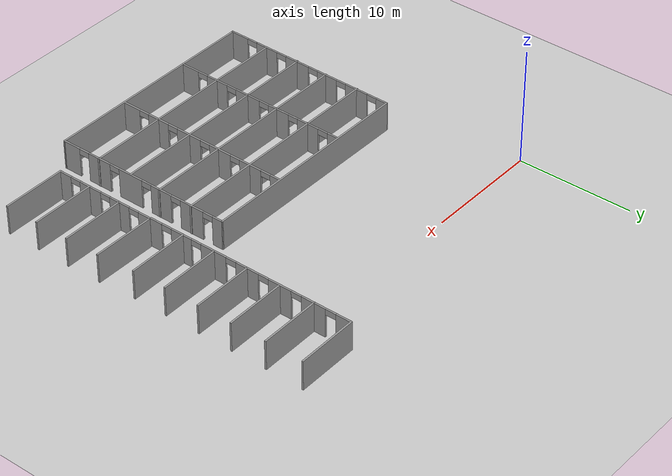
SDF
<sdf version="1.6">
 <world name="default">
  <model name="ground_plane">
   <static>1</static>
   <link name="link">
    <collision name="collision">
     <geometry><plane><normal>0 0 1</normal><size>100 100</size></plane></geometry>
     <surface>
      <contact><collide_bitmask>65535</collide_bitmask></contact>
      <friction><ode><mu>100</mu><mu2>50</mu2></ode></friction>
     </surface>
    </collision>
    <visual name="visual">
     <cast_shadows>0</cast_shadows>
     <geometry><plane><normal>0 0 1</normal><size>100 100</size></plane></geometry>
     <material>
      <script><uri>file://media/materials/scripts/gazebo.material</uri><name>Gazebo/Grey</name></script>
     </material>
    </visual>
   </link>
  </model>
  <model name="5x3_Cubicles_1">
   <pose>15.7119 -15.892 2.72806 0 -0 0</pose>
   <link name="Wall_0">
    <pose>-9.39351 -0 0 0 -0 -1.57435</pose>
    <visual name="Wall_0_Visual_0">
     <pose>-7.27295 0 1.25 0 -0 0</pose>
     <geometry><box><size>1.03181 0.15 2.5</size></box></geometry>
     <material>
      <script><uri>file://media/materials/scripts/gazebo.material</uri><name>Gazebo/Grey</name></script>
      <ambient>1 1 1 1</ambient>
     </material>
     <meta><layer>0</layer></meta>
    </visual>
    <collision name="Wall_0_Collision_0">
     <geometry><box><size>1.03181 0.15 2.5</size></box></geometry>
     <pose>-7.27295 0 1.25 0 -0 0</pose>
    </collision>
    <visual name="Wall_0_Visual_1">
     <pose>-4.8086 0 1.25 0 -0 0</pose>
     <geometry><box><size>2.09689 0.15 2.5</size></box></geometry>
     <material>
      <script><uri>file://media/materials/scripts/gazebo.material</uri><name>Gazebo/Grey</name></script>
      <ambient>1 1 1 1</ambient>
     </material>
     <meta><layer>0</layer></meta>
    </visual>
    <collision name="Wall_0_Collision_1">
     <geometry><box><size>2.09689 0.15 2.5</size></box></geometry>
     <pose>-4.8086 0 1.25 0 -0 0</pose>
    </collision>
    <visual name="Wall_0_Visual_2">
     <pose>-1.91379 0 1.25 0 -0 0</pose>
     <geometry><box><size>1.89272 0.15 2.5</size></box></geometry>
     <material>
      <script><uri>file://media/materials/scripts/gazebo.material</uri><name>Gazebo/Grey</name></script>
      <ambient>1 1 1 1</ambient>
     </material>
     <meta><layer>0</layer></meta>
    </visual>
    <collision name="Wall_0_Collision_2">
     <geometry><box><size>1.89272 0.15 2.5</size></box></geometry>
     <pose>-1.91379 0 1.25 0 -0 0</pose>
    </collision>
    <visual name="Wall_0_Visual_3">
     <pose>1.06918 0 1.25 0 -0 0</pose>
     <geometry><box><size>2.27323 0.15 2.5</size></box></geometry>
     <material>
      <script><uri>file://media/materials/scripts/gazebo.material</uri><name>Gazebo/Grey</name></script>
      <ambient>1 1 1 1</ambient>
     </material>
     <meta><layer>0</layer></meta>
    </visual>
    <collision name="Wall_0_Collision_3">
     <geometry><box><size>2.27323 0.15 2.5</size></box></geometry>
     <pose>1.06918 0 1.25 0 -0 0</pose>
    </collision>
    <visual name="Wall_0_Visual_4">
     <pose>4.14705 0 1.25 0 -0 0</pose>
     <geometry><box><size>2.0825 0.15 2.5</size></box></geometry>
     <material>
      <script><uri>file://media/materials/scripts/gazebo.material</uri><name>Gazebo/Grey</name></script>
      <ambient>1 1 1 1</ambient>
     </material>
     <meta><layer>0</layer></meta>
    </visual>
    <collision name="Wall_0_Collision_4">
     <geometry><box><size>2.0825 0.15 2.5</size></box></geometry>
     <pose>4.14705 0 1.25 0 -0 0</pose>
    </collision>
    <visual name="Wall_0_Visual_5">
     <pose>6.93858 0 1.25 0 -0 0</pose>
     <geometry><box><size>1.70057 0.15 2.5</size></box></geometry>
     <material>
      <script><uri>file://media/materials/scripts/gazebo.material</uri><name>Gazebo/Grey</name></script>
      <ambient>1 1 1 1</ambient>
     </material>
     <meta><layer>0</layer></meta>
    </visual>
    <collision name="Wall_0_Collision_5">
     <geometry><box><size>1.70057 0.15 2.5</size></box></geometry>
     <pose>6.93858 0 1.25 0 -0 0</pose>
    </collision>
    <visual name="Wall_0_Visual_6">
     <pose>-6.30705 0 2.25 0 -0 0</pose>
     <geometry><box><size>0.9 0.15 0.5</size></box></geometry>
     <material>
      <script><uri>file://media/materials/scripts/gazebo.material</uri><name>Gazebo/Grey</name></script>
      <ambient>1 1 1 1</ambient>
     </material>
     <meta><layer>0</layer></meta>
    </visual>
    <collision name="Wall_0_Collision_6">
     <geometry><box><size>0.9 0.15 0.5</size></box></geometry>
     <pose>-6.30705 0 2.25 0 -0 0</pose>
    </collision>
    <visual name="Wall_0_Visual_7">
     <pose>-3.31016 0 2.25 0 -0 0</pose>
     <geometry><box><size>0.9 0.15 0.5</size></box></geometry>
     <material>
      <script><uri>file://media/materials/scripts/gazebo.material</uri><name>Gazebo/Grey</name></script>
      <ambient>1 1 1 1</ambient>
     </material>
     <meta><layer>0</layer></meta>
    </visual>
    <collision name="Wall_0_Collision_7">
     <geometry><box><size>0.9 0.15 0.5</size></box></geometry>
     <pose>-3.31016 0 2.25 0 -0 0</pose>
    </collision>
    <visual name="Wall_0_Visual_8">
     <pose>-0.517433 0 2.25 0 -0 0</pose>
     <geometry><box><size>0.9 0.15 0.5</size></box></geometry>
     <material>
      <script><uri>file://media/materials/scripts/gazebo.material</uri><name>Gazebo/Grey</name></script>
      <ambient>1 1 1 1</ambient>
     </material>
     <meta><layer>0</layer></meta>
    </visual>
    <collision name="Wall_0_Collision_8">
     <geometry><box><size>0.9 0.15 0.5</size></box></geometry>
     <pose>-0.517433 0 2.25 0 -0 0</pose>
    </collision>
    <visual name="Wall_0_Visual_9">
     <pose>2.6558 0 2.25 0 -0 0</pose>
     <geometry><box><size>0.9 0.15 0.5</size></box></geometry>
     <material>
      <script><uri>file://media/materials/scripts/gazebo.material</uri><name>Gazebo/Grey</name></script>
      <ambient>1 1 1 1</ambient>
     </material>
     <meta><layer>0</layer></meta>
    </visual>
    <collision name="Wall_0_Collision_9">
     <geometry><box><size>0.9 0.15 0.5</size></box></geometry>
     <pose>2.6558 0 2.25 0 -0 0</pose>
    </collision>
    <visual name="Wall_0_Visual_10">
     <pose>5.63829 0 2.25 0 -0 0</pose>
     <geometry><box><size>0.9 0.15 0.5</size></box></geometry>
     <material>
      <script><uri>file://media/materials/scripts/gazebo.material</uri><name>Gazebo/Grey</name></script>
      <ambient>1 1 1 1</ambient>
     </material>
     <meta><layer>0</layer></meta>
    </visual>
    <collision name="Wall_0_Collision_10">
     <geometry><box><size>0.9 0.15 0.5</size></box></geometry>
     <pose>5.63829 0 2.25 0 -0 0</pose>
    </collision>
   </link>
   <link name="Wall_10">
    <collision name="Wall_10_Collision">
     <geometry><box><size>19 0.15 2.5</size></box></geometry>
     <pose>0 0 1.25 0 -0 0</pose>
    </collision>
    <visual name="Wall_10_Visual">
     <pose>0 0 1.25 0 -0 0</pose>
     <geometry><box><size>19 0.15 2.5</size></box></geometry>
     <material>
      <script><uri>file://media/materials/scripts/gazebo.material</uri><name>Gazebo/Grey</name></script>
      <ambient>1 1 1 1</ambient>
     </material>
     <meta><layer>0</layer></meta>
    </visual>
    <pose>-0 1.73972 0 0 -0 0</pose>
   </link>
   <link name="Wall_12">
    <collision name="Wall_12_Collision">
     <geometry><box><size>19 0.15 2.5</size></box></geometry>
     <pose>0 0 1.25 0 -0 0</pose>
    </collision>
    <visual name="Wall_12_Visual">
     <pose>0 0 1.25 0 -0 0</pose>
     <geometry><box><size>19 0.15 2.5</size></box></geometry>
     <material>
      <script><uri>file://media/materials/scripts/gazebo.material</uri><name>Gazebo/Grey</name></script>
      <ambient>1 1 1 1</ambient>
     </material>
     <meta><layer>0</layer></meta>
    </visual>
    <pose>0.002757 4.78648 0 0 -0 0</pose>
   </link>
   <link name="Wall_14">
    <pose>3.03244 -0.038205 0 0 -0 -1.57332</pose>
    <visual name="Wall_14_Visual_0">
     <pose>-7.27661 0 1.25 0 -0 0</pose>
     <geometry><box><size>0.887786 0.15 2.5</size></box></geometry>
     <material>
      <script><uri>file://media/materials/scripts/gazebo.material</uri><name>Gazebo/Grey</name></script>
      <ambient>1 1 1 1</ambient>
     </material>
     <meta><layer>0</layer></meta>
    </visual>
    <collision name="Wall_14_Collision_0">
     <geometry><box><size>0.887786 0.15 2.5</size></box></geometry>
     <pose>-7.27661 0 1.25 0 -0 0</pose>
    </collision>
    <visual name="Wall_14_Visual_1">
     <pose>-4.91212 0 1.25 0 -0 0</pose>
     <geometry><box><size>2.04118 0.15 2.5</size></box></geometry>
     <material>
      <script><uri>file://media/materials/scripts/gazebo.material</uri><name>Gazebo/Grey</name></script>
      <ambient>1 1 1 1</ambient>
     </material>
     <meta><layer>0</layer></meta>
    </visual>
    <collision name="Wall_14_Collision_1">
     <geometry><box><size>2.04118 0.15 2.5</size></box></geometry>
     <pose>-4.91212 0 1.25 0 -0 0</pose>
    </collision>
    <visual name="Wall_14_Visual_2">
     <pose>-1.97726 0 1.25 0 -0 0</pose>
     <geometry><box><size>2.02854 0.15 2.5</size></box></geometry>
     <material>
      <script><uri>file://media/materials/scripts/gazebo.material</uri><name>Gazebo/Grey</name></script>
      <ambient>1 1 1 1</ambient>
     </material>
     <meta><layer>0</layer></meta>
    </visual>
    <collision name="Wall_14_Collision_2">
     <geometry><box><size>2.02854 0.15 2.5</size></box></geometry>
     <pose>-1.97726 0 1.25 0 -0 0</pose>
    </collision>
    <visual name="Wall_14_Visual_3">
     <pose>1.09454 0 1.25 0 -0 0</pose>
     <geometry><box><size>2.31505 0.15 2.5</size></box></geometry>
     <material>
      <script><uri>file://media/materials/scripts/gazebo.material</uri><name>Gazebo/Grey</name></script>
      <ambient>1 1 1 1</ambient>
     </material>
     <meta><layer>0</layer></meta>
    </visual>
    <collision name="Wall_14_Collision_3">
     <geometry><box><size>2.31505 0.15 2.5</size></box></geometry>
     <pose>1.09454 0 1.25 0 -0 0</pose>
    </collision>
    <visual name="Wall_14_Visual_4">
     <pose>4.15071 0 1.25 0 -0 0</pose>
     <geometry><box><size>1.9973 0.15 2.5</size></box></geometry>
     <material>
      <script><uri>file://media/materials/scripts/gazebo.material</uri><name>Gazebo/Grey</name></script>
      <ambient>1 1 1 1</ambient>
     </material>
     <meta><layer>0</layer></meta>
    </visual>
    <collision name="Wall_14_Collision_4">
     <geometry><box><size>1.9973 0.15 2.5</size></box></geometry>
     <pose>4.15071 0 1.25 0 -0 0</pose>
    </collision>
    <visual name="Wall_14_Visual_5">
     <pose>6.88493 0 1.25 0 -0 0</pose>
     <geometry><box><size>1.67114 0.15 2.5</size></box></geometry>
     <material>
      <script><uri>file://media/materials/scripts/gazebo.material</uri><name>Gazebo/Grey</name></script>
      <ambient>1 1 1 1</ambient>
     </material>
     <meta><layer>0</layer></meta>
    </visual>
    <collision name="Wall_14_Collision_5">
     <geometry><box><size>1.67114 0.15 2.5</size></box></geometry>
     <pose>6.88493 0 1.25 0 -0 0</pose>
    </collision>
    <visual name="Wall_14_Visual_6">
     <pose>-6.38271 0 2.25 0 -0 0</pose>
     <geometry><box><size>0.9 0.15 0.5</size></box></geometry>
     <material>
      <script><uri>file://media/materials/scripts/gazebo.material</uri><name>Gazebo/Grey</name></script>
      <ambient>1 1 1 1</ambient>
     </material>
     <meta><layer>0</layer></meta>
    </visual>
    <collision name="Wall_14_Collision_6">
     <geometry><box><size>0.9 0.15 0.5</size></box></geometry>
     <pose>-6.38271 0 2.25 0 -0 0</pose>
    </collision>
    <visual name="Wall_14_Visual_7">
     <pose>-3.44153 0 2.25 0 -0 0</pose>
     <geometry><box><size>0.9 0.15 0.5</size></box></geometry>
     <material>
      <script><uri>file://media/materials/scripts/gazebo.material</uri><name>Gazebo/Grey</name></script>
      <ambient>1 1 1 1</ambient>
     </material>
     <meta><layer>0</layer></meta>
    </visual>
    <collision name="Wall_14_Collision_7">
     <geometry><box><size>0.9 0.15 0.5</size></box></geometry>
     <pose>-3.44153 0 2.25 0 -0 0</pose>
    </collision>
    <visual name="Wall_14_Visual_8">
     <pose>-0.512986 0 2.25 0 -0 0</pose>
     <geometry><box><size>0.9 0.15 0.5</size></box></geometry>
     <material>
      <script><uri>file://media/materials/scripts/gazebo.material</uri><name>Gazebo/Grey</name></script>
      <ambient>1 1 1 1</ambient>
     </material>
     <meta><layer>0</layer></meta>
    </visual>
    <collision name="Wall_14_Collision_8">
     <geometry><box><size>0.9 0.15 0.5</size></box></geometry>
     <pose>-0.512986 0 2.25 0 -0 0</pose>
    </collision>
    <visual name="Wall_14_Visual_9">
     <pose>2.70206 0 2.25 0 -0 0</pose>
     <geometry><box><size>0.9 0.15 0.5</size></box></geometry>
     <material>
      <script><uri>file://media/materials/scripts/gazebo.material</uri><name>Gazebo/Grey</name></script>
      <ambient>1 1 1 1</ambient>
     </material>
     <meta><layer>0</layer></meta>
    </visual>
    <collision name="Wall_14_Collision_9">
     <geometry><box><size>0.9 0.15 0.5</size></box></geometry>
     <pose>2.70206 0 2.25 0 -0 0</pose>
    </collision>
    <visual name="Wall_14_Visual_10">
     <pose>5.59936 0 2.25 0 -0 0</pose>
     <geometry><box><size>0.9 0.15 0.5</size></box></geometry>
     <material>
      <script><uri>file://media/materials/scripts/gazebo.material</uri><name>Gazebo/Grey</name></script>
      <ambient>1 1 1 1</ambient>
     </material>
     <meta><layer>0</layer></meta>
    </visual>
    <collision name="Wall_14_Collision_10">
     <geometry><box><size>0.9 0.15 0.5</size></box></geometry>
     <pose>5.59936 0 2.25 0 -0 0</pose>
    </collision>
   </link>
   <link name="Wall_16">
    <pose>-3.57321 -0.011645 0 0 -0 -1.5708</pose>
    <visual name="Wall_16_Visual_0">
     <pose>-7.25015 0 1.25 0 -0 0</pose>
     <geometry><box><size>0.999697 0.15 2.5</size></box></geometry>
     <material>
      <script><uri>file://media/materials/scripts/gazebo.material</uri><name>Gazebo/Grey</name></script>
      <ambient>1 1 1 1</ambient>
     </material>
     <meta><layer>0</layer></meta>
    </visual>
    <collision name="Wall_16_Collision_0">
     <geometry><box><size>0.999697 0.15 2.5</size></box></geometry>
     <pose>-7.25015 0 1.25 0 -0 0</pose>
    </collision>
    <visual name="Wall_16_Visual_1">
     <pose>-4.84832 0 1.25 0 -0 0</pose>
     <geometry><box><size>2.00397 0.15 2.5</size></box></geometry>
     <material>
      <script><uri>file://media/materials/scripts/gazebo.material</uri><name>Gazebo/Grey</name></script>
      <ambient>1 1 1 1</ambient>
     </material>
     <meta><layer>0</layer></meta>
    </visual>
    <collision name="Wall_16_Collision_1">
     <geometry><box><size>2.00397 0.15 2.5</size></box></geometry>
     <pose>-4.84832 0 1.25 0 -0 0</pose>
    </collision>
    <visual name="Wall_16_Visual_2">
     <pose>-1.97337 0 1.25 0 -0 0</pose>
     <geometry><box><size>1.94594 0.15 2.5</size></box></geometry>
     <material>
      <script><uri>file://media/materials/scripts/gazebo.material</uri><name>Gazebo/Grey</name></script>
      <ambient>1 1 1 1</ambient>
     </material>
     <meta><layer>0</layer></meta>
    </visual>
    <collision name="Wall_16_Collision_2">
     <geometry><box><size>1.94594 0.15 2.5</size></box></geometry>
     <pose>-1.97337 0 1.25 0 -0 0</pose>
    </collision>
    <visual name="Wall_16_Visual_3">
     <pose>1.06765 0 1.25 0 -0 0</pose>
     <geometry><box><size>2.3361 0.15 2.5</size></box></geometry>
     <material>
      <script><uri>file://media/materials/scripts/gazebo.material</uri><name>Gazebo/Grey</name></script>
      <ambient>1 1 1 1</ambient>
     </material>
     <meta><layer>0</layer></meta>
    </visual>
    <collision name="Wall_16_Collision_3">
     <geometry><box><size>2.3361 0.15 2.5</size></box></geometry>
     <pose>1.06765 0 1.25 0 -0 0</pose>
    </collision>
    <visual name="Wall_16_Visual_4">
     <pose>4.14512 0 1.25 0 -0 0</pose>
     <geometry><box><size>2.01884 0.15 2.5</size></box></geometry>
     <material>
      <script><uri>file://media/materials/scripts/gazebo.material</uri><name>Gazebo/Grey</name></script>
      <ambient>1 1 1 1</ambient>
     </material>
     <meta><layer>0</layer></meta>
    </visual>
    <collision name="Wall_16_Collision_4">
     <geometry><box><size>2.01884 0.15 2.5</size></box></geometry>
     <pose>4.14512 0 1.25 0 -0 0</pose>
    </collision>
    <visual name="Wall_16_Visual_5">
     <pose>6.90227 0 1.25 0 -0 0</pose>
     <geometry><box><size>1.69546 0.15 2.5</size></box></geometry>
     <material>
      <script><uri>file://media/materials/scripts/gazebo.material</uri><name>Gazebo/Grey</name></script>
      <ambient>1 1 1 1</ambient>
     </material>
     <meta><layer>0</layer></meta>
    </visual>
    <collision name="Wall_16_Collision_5">
     <geometry><box><size>1.69546 0.15 2.5</size></box></geometry>
     <pose>6.90227 0 1.25 0 -0 0</pose>
    </collision>
    <visual name="Wall_16_Visual_6">
     <pose>-6.3003 0 2.25 0 -0 0</pose>
     <geometry><box><size>0.9 0.15 0.5</size></box></geometry>
     <material>
      <script><uri>file://media/materials/scripts/gazebo.material</uri><name>Gazebo/Grey</name></script>
      <ambient>1 1 1 1</ambient>
     </material>
     <meta><layer>0</layer></meta>
    </visual>
    <collision name="Wall_16_Collision_6">
     <geometry><box><size>0.9 0.15 0.5</size></box></geometry>
     <pose>-6.3003 0 2.25 0 -0 0</pose>
    </collision>
    <visual name="Wall_16_Visual_7">
     <pose>-3.39634 0 2.25 0 -0 0</pose>
     <geometry><box><size>0.9 0.15 0.5</size></box></geometry>
     <material>
      <script><uri>file://media/materials/scripts/gazebo.material</uri><name>Gazebo/Grey</name></script>
      <ambient>1 1 1 1</ambient>
     </material>
     <meta><layer>0</layer></meta>
    </visual>
    <collision name="Wall_16_Collision_7">
     <geometry><box><size>0.9 0.15 0.5</size></box></geometry>
     <pose>-3.39634 0 2.25 0 -0 0</pose>
    </collision>
    <visual name="Wall_16_Visual_8">
     <pose>-0.5504 0 2.25 0 -0 0</pose>
     <geometry><box><size>0.9 0.15 0.5</size></box></geometry>
     <material>
      <script><uri>file://media/materials/scripts/gazebo.material</uri><name>Gazebo/Grey</name></script>
      <ambient>1 1 1 1</ambient>
     </material>
     <meta><layer>0</layer></meta>
    </visual>
    <collision name="Wall_16_Collision_8">
     <geometry><box><size>0.9 0.15 0.5</size></box></geometry>
     <pose>-0.5504 0 2.25 0 -0 0</pose>
    </collision>
    <visual name="Wall_16_Visual_9">
     <pose>2.6857 0 2.25 0 -0 0</pose>
     <geometry><box><size>0.9 0.15 0.5</size></box></geometry>
     <material>
      <script><uri>file://media/materials/scripts/gazebo.material</uri><name>Gazebo/Grey</name></script>
      <ambient>1 1 1 1</ambient>
     </material>
     <meta><layer>0</layer></meta>
    </visual>
    <collision name="Wall_16_Collision_9">
     <geometry><box><size>0.9 0.15 0.5</size></box></geometry>
     <pose>2.6857 0 2.25 0 -0 0</pose>
    </collision>
    <visual name="Wall_16_Visual_10">
     <pose>5.60454 0 2.25 0 -0 0</pose>
     <geometry><box><size>0.9 0.15 0.5</size></box></geometry>
     <material>
      <script><uri>file://media/materials/scripts/gazebo.material</uri><name>Gazebo/Grey</name></script>
      <ambient>1 1 1 1</ambient>
     </material>
     <meta><layer>0</layer></meta>
    </visual>
    <collision name="Wall_16_Collision_10">
     <geometry><box><size>0.9 0.15 0.5</size></box></geometry>
     <pose>5.60454 0 2.25 0 -0 0</pose>
    </collision>
   </link>
   <link name="Wall_2">
    <collision name="Wall_2_Collision">
     <geometry><box><size>19 0.15 2.5</size></box></geometry>
     <pose>0 0 1.25 0 -0 0</pose>
    </collision>
    <visual name="Wall_2_Visual">
     <pose>0 0 1.25 0 -0 0</pose>
     <geometry><box><size>19 0.15 2.5</size></box></geometry>
     <material>
      <script><uri>file://media/materials/scripts/gazebo.material</uri><name>Gazebo/Grey</name></script>
      <ambient>1 1 1 1</ambient>
     </material>
     <meta><layer>0</layer></meta>
    </visual>
    <pose>0.004043 -7.71378 0 0 -0 0</pose>
   </link>
   <link name="Wall_3">
    <pose>9.40486 -0.007207 0 0 -0 1.57394</pose>
    <visual name="Wall_3_Visual_0">
     <pose>-6.96276 0 1.25 0 -0 0</pose>
     <geometry><box><size>1.63776 0.15 2.5</size></box></geometry>
     <material>
      <script><uri>file://media/materials/scripts/gazebo.material</uri><name>Gazebo/Grey</name></script>
      <ambient>1 1 1 1</ambient>
     </material>
     <meta><layer>0</layer></meta>
    </visual>
    <collision name="Wall_3_Collision_0">
     <geometry><box><size>1.63776 0.15 2.5</size></box></geometry>
     <pose>-6.96276 0 1.25 0 -0 0</pose>
    </collision>
    <visual name="Wall_3_Visual_1">
     <pose>-4.17068 0 1.25 0 -0 0</pose>
     <geometry><box><size>2.14639 0.15 2.5</size></box></geometry>
     <material>
      <script><uri>file://media/materials/scripts/gazebo.material</uri><name>Gazebo/Grey</name></script>
      <ambient>1 1 1 1</ambient>
     </material>
     <meta><layer>0</layer></meta>
    </visual>
    <collision name="Wall_3_Collision_1">
     <geometry><box><size>2.14639 0.15 2.5</size></box></geometry>
     <pose>-4.17068 0 1.25 0 -0 0</pose>
    </collision>
    <visual name="Wall_3_Visual_2">
     <pose>-1.08256 0 1.25 0 -0 0</pose>
     <geometry><box><size>2.22987 0.15 2.5</size></box></geometry>
     <material>
      <script><uri>file://media/materials/scripts/gazebo.material</uri><name>Gazebo/Grey</name></script>
      <ambient>1 1 1 1</ambient>
     </material>
     <meta><layer>0</layer></meta>
    </visual>
    <collision name="Wall_3_Collision_2">
     <geometry><box><size>2.22987 0.15 2.5</size></box></geometry>
     <pose>-1.08256 0 1.25 0 -0 0</pose>
    </collision>
    <visual name="Wall_3_Visual_3">
     <pose>1.90922 0 1.25 0 -0 0</pose>
     <geometry><box><size>1.95369 0.15 2.5</size></box></geometry>
     <material>
      <script><uri>file://media/materials/scripts/gazebo.material</uri><name>Gazebo/Grey</name></script>
      <ambient>1 1 1 1</ambient>
     </material>
     <meta><layer>0</layer></meta>
    </visual>
    <collision name="Wall_3_Collision_3">
     <geometry><box><size>1.95369 0.15 2.5</size></box></geometry>
     <pose>1.90922 0 1.25 0 -0 0</pose>
    </collision>
    <visual name="Wall_3_Visual_4">
     <pose>4.85258 0 1.25 0 -0 0</pose>
     <geometry><box><size>2.13302 0.15 2.5</size></box></geometry>
     <material>
      <script><uri>file://media/materials/scripts/gazebo.material</uri><name>Gazebo/Grey</name></script>
      <ambient>1 1 1 1</ambient>
     </material>
     <meta><layer>0</layer></meta>
    </visual>
    <collision name="Wall_3_Collision_4">
     <geometry><box><size>2.13302 0.15 2.5</size></box></geometry>
     <pose>4.85258 0 1.25 0 -0 0</pose>
    </collision>
    <visual name="Wall_3_Visual_5">
     <pose>7.30037 0 1.25 0 -0 0</pose>
     <geometry><box><size>0.962557 0.15 2.5</size></box></geometry>
     <material>
      <script><uri>file://media/materials/scripts/gazebo.material</uri><name>Gazebo/Grey</name></script>
      <ambient>1 1 1 1</ambient>
     </material>
     <meta><layer>0</layer></meta>
    </visual>
    <collision name="Wall_3_Collision_5">
     <geometry><box><size>0.962557 0.15 2.5</size></box></geometry>
     <pose>7.30037 0 1.25 0 -0 0</pose>
    </collision>
    <visual name="Wall_3_Visual_6">
     <pose>-5.69388 0 2.25 0 -0 0</pose>
     <geometry><box><size>0.9 0.15 0.5</size></box></geometry>
     <material>
      <script><uri>file://media/materials/scripts/gazebo.material</uri><name>Gazebo/Grey</name></script>
      <ambient>1 1 1 1</ambient>
     </material>
     <meta><layer>0</layer></meta>
    </visual>
    <collision name="Wall_3_Collision_6">
     <geometry><box><size>0.9 0.15 0.5</size></box></geometry>
     <pose>-5.69388 0 2.25 0 -0 0</pose>
    </collision>
    <visual name="Wall_3_Visual_7">
     <pose>-2.64749 0 2.25 0 -0 0</pose>
     <geometry><box><size>0.9 0.15 0.5</size></box></geometry>
     <material>
      <script><uri>file://media/materials/scripts/gazebo.material</uri><name>Gazebo/Grey</name></script>
      <ambient>1 1 1 1</ambient>
     </material>
     <meta><layer>0</layer></meta>
    </visual>
    <collision name="Wall_3_Collision_7">
     <geometry><box><size>0.9 0.15 0.5</size></box></geometry>
     <pose>-2.64749 0 2.25 0 -0 0</pose>
    </collision>
    <visual name="Wall_3_Visual_8">
     <pose>0.482376 0 2.25 0 -0 0</pose>
     <geometry><box><size>0.9 0.15 0.5</size></box></geometry>
     <material>
      <script><uri>file://media/materials/scripts/gazebo.material</uri><name>Gazebo/Grey</name></script>
      <ambient>1 1 1 1</ambient>
     </material>
     <meta><layer>0</layer></meta>
    </visual>
    <collision name="Wall_3_Collision_8">
     <geometry><box><size>0.9 0.15 0.5</size></box></geometry>
     <pose>0.482376 0 2.25 0 -0 0</pose>
    </collision>
    <visual name="Wall_3_Visual_9">
     <pose>3.33607 0 2.25 0 -0 0</pose>
     <geometry><box><size>0.9 0.15 0.5</size></box></geometry>
     <material>
      <script><uri>file://media/materials/scripts/gazebo.material</uri><name>Gazebo/Grey</name></script>
      <ambient>1 1 1 1</ambient>
     </material>
     <meta><layer>0</layer></meta>
    </visual>
    <collision name="Wall_3_Collision_9">
     <geometry><box><size>0.9 0.15 0.5</size></box></geometry>
     <pose>3.33607 0 2.25 0 -0 0</pose>
    </collision>
    <visual name="Wall_3_Visual_10">
     <pose>6.36909 0 2.25 0 -0 0</pose>
     <geometry><box><size>0.9 0.15 0.5</size></box></geometry>
     <material>
      <script><uri>file://media/materials/scripts/gazebo.material</uri><name>Gazebo/Grey</name></script>
      <ambient>1 1 1 1</ambient>
     </material>
     <meta><layer>0</layer></meta>
    </visual>
    <collision name="Wall_3_Collision_10">
     <geometry><box><size>0.9 0.15 0.5</size></box></geometry>
     <pose>6.36909 0 2.25 0 -0 0</pose>
    </collision>
   </link>
   <link name="Wall_4">
    <collision name="Wall_4_Collision">
     <geometry><box><size>18.8967 0.15 2.5</size></box></geometry>
     <pose>0 0 1.25 0 -0 0</pose>
    </collision>
    <visual name="Wall_4_Visual">
     <pose>0 0 1.25 0 -0 0</pose>
     <geometry><box><size>18.8967 0.15 2.5</size></box></geometry>
     <material>
      <script><uri>file://media/materials/scripts/gazebo.material</uri><name>Gazebo/Grey</name></script>
      <ambient>1 1 1 1</ambient>
     </material>
     <meta><layer>0</layer></meta>
    </visual>
    <pose>0.0073 7.70657 0 0 -0 3.14082</pose>
   </link>
   <link name="Wall_6">
    <collision name="Wall_6_Collision">
     <geometry><box><size>19 0.15 2.5</size></box></geometry>
     <pose>0 0 1.25 0 -0 0</pose>
    </collision>
    <visual name="Wall_6_Visual">
     <pose>0 0 1.25 0 -0 0</pose>
     <geometry><box><size>19 0.15 2.5</size></box></geometry>
     <material>
      <script><uri>file://media/materials/scripts/gazebo.material</uri><name>Gazebo/Grey</name></script>
      <ambient>1 1 1 1</ambient>
     </material>
     <meta><layer>0</layer></meta>
    </visual>
    <pose>0.024186 -4.2101 0 0 -0 0</pose>
   </link>
   <link name="Wall_8">
    <collision name="Wall_8_Collision">
     <geometry><box><size>19 0.15 2.5</size></box></geometry>
     <pose>0 0 1.25 0 -0 0</pose>
    </collision>
    <visual name="Wall_8_Visual">
     <pose>0 0 1.25 0 -0 0</pose>
     <geometry><box><size>19 0.15 2.5</size></box></geometry>
     <material>
      <script><uri>file://media/materials/scripts/gazebo.material</uri><name>Gazebo/Grey</name></script>
      <ambient>1 1 1 1</ambient>
     </material>
     <meta><layer>0</layer></meta>
    </visual>
    <pose>-0.024187 -1.11426 0 0 -0 0</pose>
   </link>
   <static>1</static>
  </model>
  <model name="6_cubicles_1">
   <pose>30.4025 -3.32213 2.66791 0 0 -3.13438</pose>
   <link name="Wall_18">
    <pose>2.54311 0 0 0 -0 -1.5708</pose>
    <visual name="Wall_18_Visual_0">
     <pose>-8.56856 0 1.25 0 -0 0</pose>
     <geometry><box><size>1.11288 0.15 2.5</size></box></geometry>
     <material>
      <script><uri>file://media/materials/scripts/gazebo.material</uri><name>Gazebo/Grey</name></script>
      <ambient>1 1 1 1</ambient>
     </material>
     <meta><layer>0</layer></meta>
    </visual>
    <collision name="Wall_18_Collision_0">
     <geometry><box><size>1.11288 0.15 2.5</size></box></geometry>
     <pose>-8.56856 0 1.25 0 -0 0</pose>
    </collision>
    <visual name="Wall_18_Visual_1">
     <pose>-6.16963 0 1.25 0 -0 0</pose>
     <geometry><box><size>1.885 0.15 2.5</size></box></geometry>
     <material>
      <script><uri>file://media/materials/scripts/gazebo.material</uri><name>Gazebo/Grey</name></script>
      <ambient>1 1 1 1</ambient>
     </material>
     <meta><layer>0</layer></meta>
    </visual>
    <collision name="Wall_18_Collision_1">
     <geometry><box><size>1.885 0.15 2.5</size></box></geometry>
     <pose>-6.16963 0 1.25 0 -0 0</pose>
    </collision>
    <visual name="Wall_18_Visual_2">
     <pose>-3.1748 0 1.25 0 -0 0</pose>
     <geometry><box><size>2.30465 0.15 2.5</size></box></geometry>
     <material>
      <script><uri>file://media/materials/scripts/gazebo.material</uri><name>Gazebo/Grey</name></script>
      <ambient>1 1 1 1</ambient>
     </material>
     <meta><layer>0</layer></meta>
    </visual>
    <collision name="Wall_18_Collision_2">
     <geometry><box><size>2.30465 0.15 2.5</size></box></geometry>
     <pose>-3.1748 0 1.25 0 -0 0</pose>
    </collision>
    <visual name="Wall_18_Visual_3">
     <pose>-0.103676 0 1.25 0 -0 0</pose>
     <geometry><box><size>2.0376 0.15 2.5</size></box></geometry>
     <material>
      <script><uri>file://media/materials/scripts/gazebo.material</uri><name>Gazebo/Grey</name></script>
      <ambient>1 1 1 1</ambient>
     </material>
     <meta><layer>0</layer></meta>
    </visual>
    <collision name="Wall_18_Collision_3">
     <geometry><box><size>2.0376 0.15 2.5</size></box></geometry>
     <pose>-0.103676 0 1.25 0 -0 0</pose>
    </collision>
    <visual name="Wall_18_Visual_4">
     <pose>2.83392 0 1.25 0 -0 0</pose>
     <geometry><box><size>2.0376 0.15 2.5</size></box></geometry>
     <material>
      <script><uri>file://media/materials/scripts/gazebo.material</uri><name>Gazebo/Grey</name></script>
      <ambient>1 1 1 1</ambient>
     </material>
     <meta><layer>0</layer></meta>
    </visual>
    <collision name="Wall_18_Collision_4">
     <geometry><box><size>2.0376 0.15 2.5</size></box></geometry>
     <pose>2.83392 0 1.25 0 -0 0</pose>
    </collision>
    <visual name="Wall_18_Visual_5">
     <pose>5.80967 0 1.25 0 -0 0</pose>
     <geometry><box><size>2.1139 0.15 2.5</size></box></geometry>
     <material>
      <script><uri>file://media/materials/scripts/gazebo.material</uri><name>Gazebo/Grey</name></script>
      <ambient>1 1 1 1</ambient>
     </material>
     <meta><layer>0</layer></meta>
    </visual>
    <collision name="Wall_18_Collision_5">
     <geometry><box><size>2.1139 0.15 2.5</size></box></geometry>
     <pose>5.80967 0 1.25 0 -0 0</pose>
    </collision>
    <visual name="Wall_18_Visual_6">
     <pose>8.44581 0 1.25 0 -0 0</pose>
     <geometry><box><size>1.35838 0.15 2.5</size></box></geometry>
     <material>
      <script><uri>file://media/materials/scripts/gazebo.material</uri><name>Gazebo/Grey</name></script>
      <ambient>1 1 1 1</ambient>
     </material>
     <meta><layer>0</layer></meta>
    </visual>
    <collision name="Wall_18_Collision_6">
     <geometry><box><size>1.35838 0.15 2.5</size></box></geometry>
     <pose>8.44581 0 1.25 0 -0 0</pose>
    </collision>
    <visual name="Wall_18_Visual_7">
     <pose>-7.56212 0 2.25 0 -0 0</pose>
     <geometry><box><size>0.9 0.15 0.5</size></box></geometry>
     <material>
      <script><uri>file://media/materials/scripts/gazebo.material</uri><name>Gazebo/Grey</name></script>
      <ambient>1 1 1 1</ambient>
     </material>
     <meta><layer>0</layer></meta>
    </visual>
    <collision name="Wall_18_Collision_7">
     <geometry><box><size>0.9 0.15 0.5</size></box></geometry>
     <pose>-7.56212 0 2.25 0 -0 0</pose>
    </collision>
    <visual name="Wall_18_Visual_8">
     <pose>-4.77713 0 2.25 0 -0 0</pose>
     <geometry><box><size>0.9 0.15 0.5</size></box></geometry>
     <material>
      <script><uri>file://media/materials/scripts/gazebo.material</uri><name>Gazebo/Grey</name></script>
      <ambient>1 1 1 1</ambient>
     </material>
     <meta><layer>0</layer></meta>
    </visual>
    <collision name="Wall_18_Collision_8">
     <geometry><box><size>0.9 0.15 0.5</size></box></geometry>
     <pose>-4.77713 0 2.25 0 -0 0</pose>
    </collision>
    <visual name="Wall_18_Visual_9">
     <pose>-1.57248 0 2.25 0 -0 0</pose>
     <geometry><box><size>0.9 0.15 0.5</size></box></geometry>
     <material>
      <script><uri>file://media/materials/scripts/gazebo.material</uri><name>Gazebo/Grey</name></script>
      <ambient>1 1 1 1</ambient>
     </material>
     <meta><layer>0</layer></meta>
    </visual>
    <collision name="Wall_18_Collision_9">
     <geometry><box><size>0.9 0.15 0.5</size></box></geometry>
     <pose>-1.57248 0 2.25 0 -0 0</pose>
    </collision>
    <visual name="Wall_18_Visual_10">
     <pose>1.36512 0 2.25 0 -0 0</pose>
     <geometry><box><size>0.9 0.15 0.5</size></box></geometry>
     <material>
      <script><uri>file://media/materials/scripts/gazebo.material</uri><name>Gazebo/Grey</name></script>
      <ambient>1 1 1 1</ambient>
     </material>
     <meta><layer>0</layer></meta>
    </visual>
    <collision name="Wall_18_Collision_10">
     <geometry><box><size>0.9 0.15 0.5</size></box></geometry>
     <pose>1.36512 0 2.25 0 -0 0</pose>
    </collision>
    <visual name="Wall_18_Visual_11">
     <pose>4.30272 0 2.25 0 -0 0</pose>
     <geometry><box><size>0.9 0.15 0.5</size></box></geometry>
     <material>
      <script><uri>file://media/materials/scripts/gazebo.material</uri><name>Gazebo/Grey</name></script>
      <ambient>1 1 1 1</ambient>
     </material>
     <meta><layer>0</layer></meta>
    </visual>
    <collision name="Wall_18_Collision_11">
     <geometry><box><size>0.9 0.15 0.5</size></box></geometry>
     <pose>4.30272 0 2.25 0 -0 0</pose>
    </collision>
    <visual name="Wall_18_Visual_12">
     <pose>7.31662 0 2.25 0 -0 0</pose>
     <geometry><box><size>0.9 0.15 0.5</size></box></geometry>
     <material>
      <script><uri>file://media/materials/scripts/gazebo.material</uri><name>Gazebo/Grey</name></script>
      <ambient>1 1 1 1</ambient>
     </material>
     <meta><layer>0</layer></meta>
    </visual>
    <collision name="Wall_18_Collision_12">
     <geometry><box><size>0.9 0.15 0.5</size></box></geometry>
     <pose>7.31662 0 2.25 0 -0 0</pose>
    </collision>
   </link>
   <link name="Wall_19">
    <collision name="Wall_19_Collision">
     <geometry><box><size>5.25 0.15 2.5</size></box></geometry>
     <pose>0 0 1.25 0 -0 0</pose>
    </collision>
    <visual name="Wall_19_Visual">
     <pose>0 0 1.25 0 -0 0</pose>
     <geometry><box><size>5.25 0.15 2.5</size></box></geometry>
     <material>
      <script><uri>file://media/materials/scripts/gazebo.material</uri><name>Gazebo/Grey</name></script>
      <ambient>1 1 1 1</ambient>
     </material>
     <meta><layer>0</layer></meta>
    </visual>
    <pose>-0.006891 -9.05 0 0 -0 3.14159</pose>
   </link>
   <link name="Wall_21">
    <collision name="Wall_21_Collision">
     <geometry><box><size>5.25 0.15 2.5</size></box></geometry>
     <pose>0 0 1.25 0 -0 0</pose>
    </collision>
    <visual name="Wall_21_Visual">
     <pose>0 0 1.25 0 -0 0</pose>
     <geometry><box><size>5.25 0.15 2.5</size></box></geometry>
     <material>
      <script><uri>file://media/materials/scripts/gazebo.material</uri><name>Gazebo/Grey</name></script>
      <ambient>1 1 1 1</ambient>
     </material>
     <meta><layer>0</layer></meta>
    </visual>
    <pose>-0.019075 6.0361 0 0 -0 0</pose>
   </link>
   <link name="Wall_23">
    <collision name="Wall_23_Collision">
     <geometry><box><size>5.25 0.15 2.5</size></box></geometry>
     <pose>0 0 1.25 0 -0 0</pose>
    </collision>
    <visual name="Wall_23_Visual">
     <pose>0 0 1.25 0 -0 0</pose>
     <geometry><box><size>5.25 0.15 2.5</size></box></geometry>
     <material>
      <script><uri>file://media/materials/scripts/gazebo.material</uri><name>Gazebo/Grey</name></script>
      <ambient>1 1 1 1</ambient>
     </material>
     <meta><layer>0</layer></meta>
    </visual>
    <pose>-0.019075 3.13665 0 0 -0 0</pose>
   </link>
   <link name="Wall_25">
    <collision name="Wall_25_Collision">
     <geometry><box><size>5.25 0.15 2.5</size></box></geometry>
     <pose>0 0 1.25 0 -0 0</pose>
    </collision>
    <visual name="Wall_25_Visual">
     <pose>0 0 1.25 0 -0 0</pose>
     <geometry><box><size>5.25 0.15 2.5</size></box></geometry>
     <material>
      <script><uri>file://media/materials/scripts/gazebo.material</uri><name>Gazebo/Grey</name></script>
      <ambient>1 1 1 1</ambient>
     </material>
     <meta><layer>0</layer></meta>
    </visual>
    <pose>-0.019075 0.122751 0 0 -0 0</pose>
   </link>
   <link name="Wall_27">
    <collision name="Wall_27_Collision">
     <geometry><box><size>5.25 0.15 2.5</size></box></geometry>
     <pose>0 0 1.25 0 -0 0</pose>
    </collision>
    <visual name="Wall_27_Visual">
     <pose>0 0 1.25 0 -0 0</pose>
     <geometry><box><size>5.25 0.15 2.5</size></box></geometry>
     <material>
      <script><uri>file://media/materials/scripts/gazebo.material</uri><name>Gazebo/Grey</name></script>
      <ambient>1 1 1 1</ambient>
     </material>
     <meta><layer>0</layer></meta>
    </visual>
    <pose>-0.019075 -2.81485 0 0 -0 0</pose>
   </link>
   <link name="Wall_29">
    <collision name="Wall_29_Collision">
     <geometry><box><size>5.25 0.15 2.5</size></box></geometry>
     <pose>0 0 1.25 0 -0 0</pose>
    </collision>
    <visual name="Wall_29_Visual">
     <pose>0 0 1.25 0 -0 0</pose>
     <geometry><box><size>5.25 0.15 2.5</size></box></geometry>
     <material>
      <script><uri>file://media/materials/scripts/gazebo.material</uri><name>Gazebo/Grey</name></script>
      <ambient>1 1 1 1</ambient>
     </material>
     <meta><layer>0</layer></meta>
    </visual>
    <pose>0.019075 -5.82875 0 0 -0 0</pose>
   </link>
   <static>1</static>
  </model>
  <model name="3_cubicles">
   <pose>30.6097 -16.9308 2.60521 0 -0 0</pose>
   <link name="Wall_31">
    <collision name="Wall_31_Collision">
     <geometry><box><size>5.43792 0.15 2.5</size></box></geometry>
     <pose>0 0 1.25 0 -0 0</pose>
    </collision>
    <visual name="Wall_31_Visual">
     <pose>0 0 1.25 0 -0 0</pose>
     <geometry><box><size>5.43792 0.15 2.5</size></box></geometry>
     <material>
      <script><uri>file://media/materials/scripts/gazebo.material</uri><name>Gazebo/Grey</name></script>
      <ambient>1 1 1 1</ambient>
     </material>
     <meta><layer>0</layer></meta>
    </visual>
    <pose>-0.043218 4.39971 0 0 -0 3.13216</pose>
   </link>
   <link name="Wall_32">
    <pose>-2.68718 -0.000351 0 0 -0 -1.5708</pose>
    <visual name="Wall_32_Visual_0">
     <pose>-3.91427 0 1.25 0 -0 0</pose>
     <geometry><box><size>1.17147 0.15 2.5</size></box></geometry>
     <material>
      <script><uri>file://media/materials/scripts/gazebo.material</uri><name>Gazebo/Grey</name></script>
      <ambient>1 1 1 1</ambient>
     </material>
     <meta><layer>0</layer></meta>
    </visual>
    <collision name="Wall_32_Collision_0">
     <geometry><box><size>1.17147 0.15 2.5</size></box></geometry>
     <pose>-3.91427 0 1.25 0 -0 0</pose>
    </collision>
    <visual name="Wall_32_Visual_1">
     <pose>-1.48172 0 1.25 0 -0 0</pose>
     <geometry><box><size>1.89362 0.15 2.5</size></box></geometry>
     <material>
      <script><uri>file://media/materials/scripts/gazebo.material</uri><name>Gazebo/Grey</name></script>
      <ambient>1 1 1 1</ambient>
     </material>
     <meta><layer>0</layer></meta>
    </visual>
    <collision name="Wall_32_Collision_1">
     <geometry><box><size>1.89362 0.15 2.5</size></box></geometry>
     <pose>-1.48172 0 1.25 0 -0 0</pose>
    </collision>
    <visual name="Wall_32_Visual_2">
     <pose>1.38672 0 1.25 0 -0 0</pose>
     <geometry><box><size>2.04328 0.15 2.5</size></box></geometry>
     <material>
      <script><uri>file://media/materials/scripts/gazebo.material</uri><name>Gazebo/Grey</name></script>
      <ambient>1 1 1 1</ambient>
     </material>
     <meta><layer>0</layer></meta>
    </visual>
    <collision name="Wall_32_Collision_2">
     <geometry><box><size>2.04328 0.15 2.5</size></box></geometry>
     <pose>1.38672 0 1.25 0 -0 0</pose>
    </collision>
    <visual name="Wall_32_Visual_3">
     <pose>3.90418 0 1.25 0 -0 0</pose>
     <geometry><box><size>1.19164 0.15 2.5</size></box></geometry>
     <material>
      <script><uri>file://media/materials/scripts/gazebo.material</uri><name>Gazebo/Grey</name></script>
      <ambient>1 1 1 1</ambient>
     </material>
     <meta><layer>0</layer></meta>
    </visual>
    <collision name="Wall_32_Collision_3">
     <geometry><box><size>1.19164 0.15 2.5</size></box></geometry>
     <pose>3.90418 0 1.25 0 -0 0</pose>
    </collision>
    <visual name="Wall_32_Visual_4">
     <pose>-2.87853 0 2.25 0 -0 0</pose>
     <geometry><box><size>0.9 0.15 0.5</size></box></geometry>
     <material>
      <script><uri>file://media/materials/scripts/gazebo.material</uri><name>Gazebo/Grey</name></script>
      <ambient>1 1 1 1</ambient>
     </material>
     <meta><layer>0</layer></meta>
    </visual>
    <collision name="Wall_32_Collision_4">
     <geometry><box><size>0.9 0.15 0.5</size></box></geometry>
     <pose>-2.87853 0 2.25 0 -0 0</pose>
    </collision>
    <visual name="Wall_32_Visual_5">
     <pose>-0.084914 0 2.25 0 -0 0</pose>
     <geometry><box><size>0.9 0.15 0.5</size></box></geometry>
     <material>
      <script><uri>file://media/materials/scripts/gazebo.material</uri><name>Gazebo/Grey</name></script>
      <ambient>1 1 1 1</ambient>
     </material>
     <meta><layer>0</layer></meta>
    </visual>
    <collision name="Wall_32_Collision_5">
     <geometry><box><size>0.9 0.15 0.5</size></box></geometry>
     <pose>-0.084914 0 2.25 0 -0 0</pose>
    </collision>
    <visual name="Wall_32_Visual_6">
     <pose>2.85836 0 2.25 0 -0 0</pose>
     <geometry><box><size>0.9 0.15 0.5</size></box></geometry>
     <material>
      <script><uri>file://media/materials/scripts/gazebo.material</uri><name>Gazebo/Grey</name></script>
      <ambient>1 1 1 1</ambient>
     </material>
     <meta><layer>0</layer></meta>
    </visual>
    <collision name="Wall_32_Collision_6">
     <geometry><box><size>0.9 0.15 0.5</size></box></geometry>
     <pose>2.85836 0 2.25 0 -0 0</pose>
    </collision>
   </link>
   <link name="Wall_33">
    <collision name="Wall_33_Collision">
     <geometry><box><size>5.5 0.15 2.5</size></box></geometry>
     <pose>0 0 1.25 0 -0 0</pose>
    </collision>
    <visual name="Wall_33_Visual">
     <pose>0 0 1.25 0 -0 0</pose>
     <geometry><box><size>5.5 0.15 2.5</size></box></geometry>
     <material>
      <script><uri>file://media/materials/scripts/gazebo.material</uri><name>Gazebo/Grey</name></script>
      <ambient>1 1 1 1</ambient>
     </material>
     <meta><layer>0</layer></meta>
    </visual>
    <pose>-0.012177 -4.42535 0 0 -0 0</pose>
   </link>
   <link name="Wall_35">
    <collision name="Wall_35_Collision">
     <geometry><box><size>5.5 0.15 2.5</size></box></geometry>
     <pose>0 0 1.25 0 -0 0</pose>
    </collision>
    <visual name="Wall_35_Visual">
     <pose>0 0 1.25 0 -0 0</pose>
     <geometry><box><size>5.5 0.15 2.5</size></box></geometry>
     <material>
      <script><uri>file://media/materials/scripts/gazebo.material</uri><name>Gazebo/Grey</name></script>
      <ambient>1 1 1 1</ambient>
     </material>
     <meta><layer>0</layer></meta>
    </visual>
    <pose>0.012765 1.43149 0 0 -0 0</pose>
   </link>
   <link name="Wall_37">
    <collision name="Wall_37_Collision">
     <geometry><box><size>5.5 0.15 2.5</size></box></geometry>
     <pose>0 0 1.25 0 -0 0</pose>
    </collision>
    <visual name="Wall_37_Visual">
     <pose>0 0 1.25 0 -0 0</pose>
     <geometry><box><size>5.5 0.15 2.5</size></box></geometry>
     <material>
      <script><uri>file://media/materials/scripts/gazebo.material</uri><name>Gazebo/Grey</name></script>
      <ambient>1 1 1 1</ambient>
     </material>
     <meta><layer>0</layer></meta>
    </visual>
    <pose>-0.012177 -1.51179 0 0 -0 0</pose>
   </link>
   <static>1</static>
  </model>
 </world>
</sdf>
